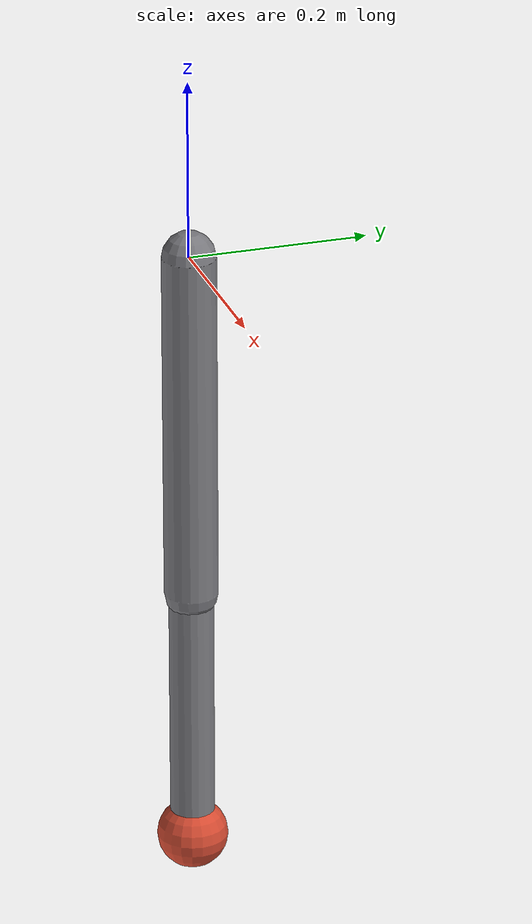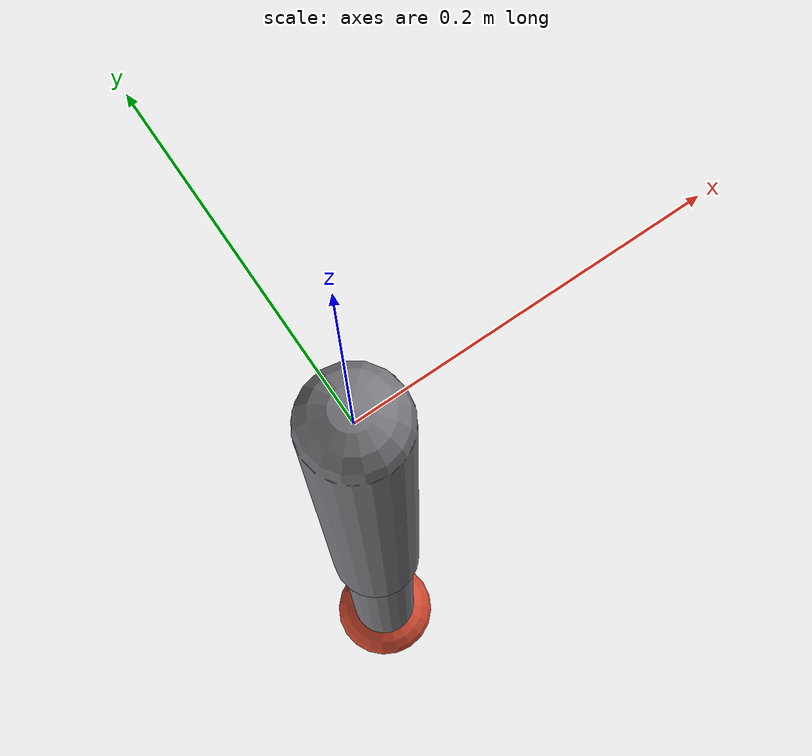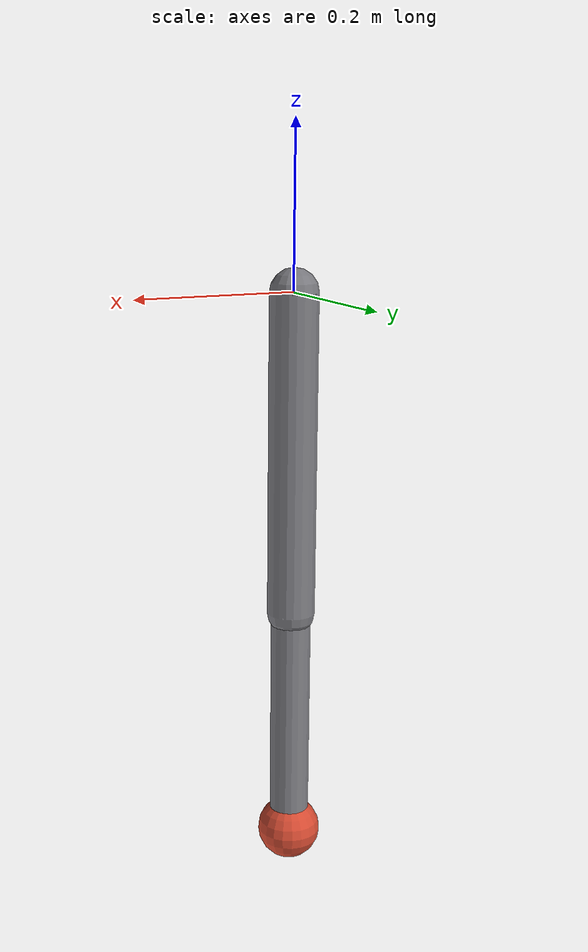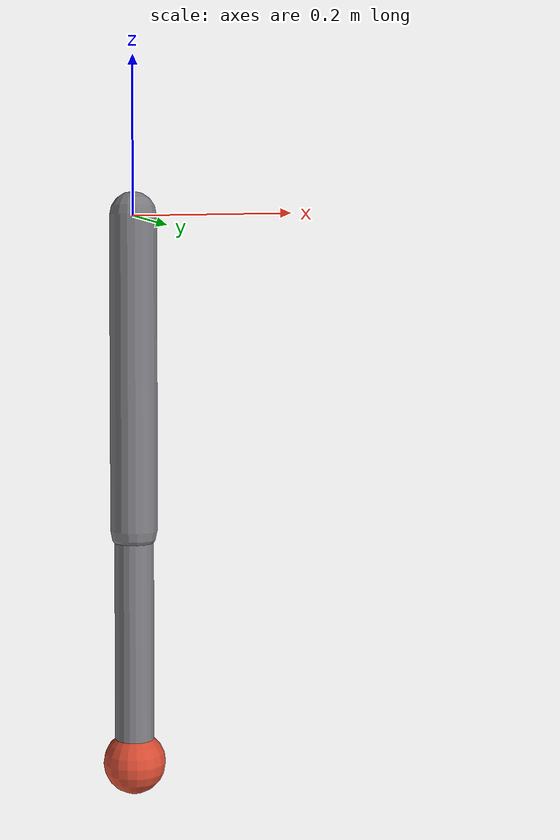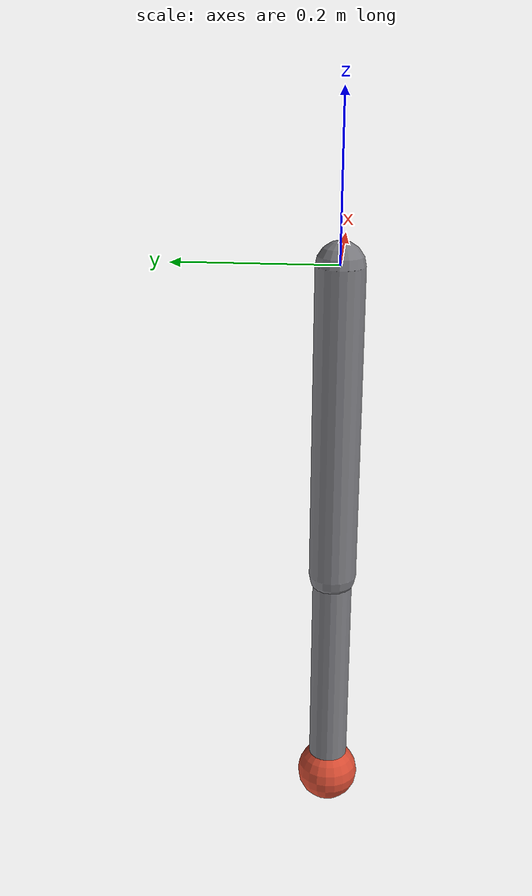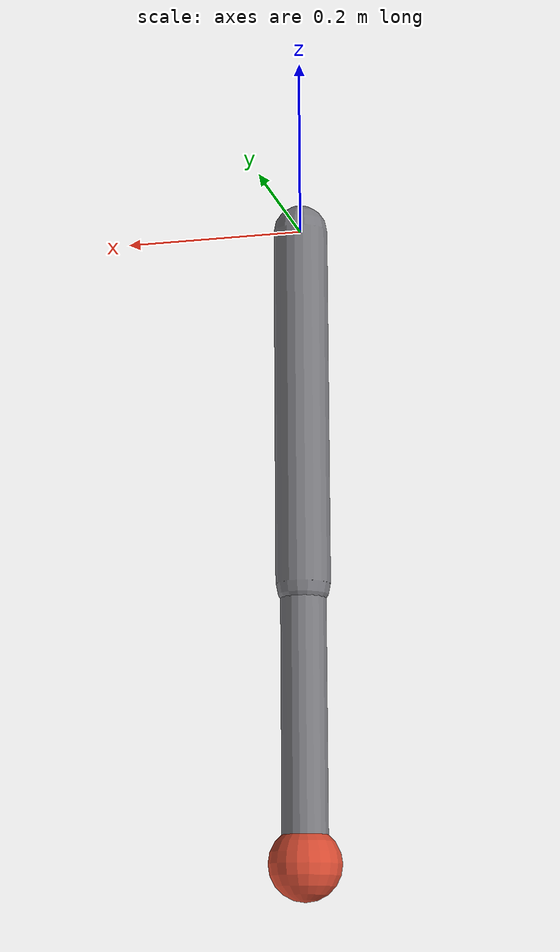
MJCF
<mujoco model="jacobian">
  <compiler angle="radian"/>
  <option gravity="0 0 -9.81" timestep="0.002" integrator="RK4">
    <flag energy="enable"/>
  </option>

  <default>
    <geom contype="0" conaffinity="0"/>
    <joint damping="0.3"/>
  </default>

  <worldbody>
    <body name="upper" pos="0 0 0">
      <joint name="shoulder" type="hinge" axis="0 1 0"/>
      <inertial pos="0 0 -0.2" mass="2.0" diaginertia="0.02 0.02 0.005"/>
      <geom name="upper_rod" type="capsule" size="0.03"
            fromto="0 0 0  0 0 -0.4" rgba="0.48 0.48 0.50 1"/>
      <body name="lower" pos="0 0 -0.4">
        <joint name="elbow" type="hinge" axis="0 1 0"/>
        <inertial pos="0 0 -0.15" mass="1.0" diaginertia="0.008 0.008 0.002"/>
        <geom name="lower_rod" type="capsule" size="0.025"
              fromto="0 0 0  0 0 -0.3" rgba="0.48 0.48 0.50 1"/>
        <geom name="tip" type="sphere" size="0.04"
              pos="0 0 -0.3" rgba="0.85 0.3 0.2 1"/>
        <site name="end_effector" pos="0 0 -0.3"/>
      </body>
    </body>
  </worldbody>

  <actuator>
    <motor name="shoulder_motor" joint="shoulder" gear="1"/>
    <motor name="elbow_motor" joint="elbow" gear="1"/>
  </actuator>

  <sensor>
    <jointpos name="s_jpos" joint="shoulder"/>
    <jointpos name="e_jpos" joint="elbow"/>
  </sensor>
</mujoco>
